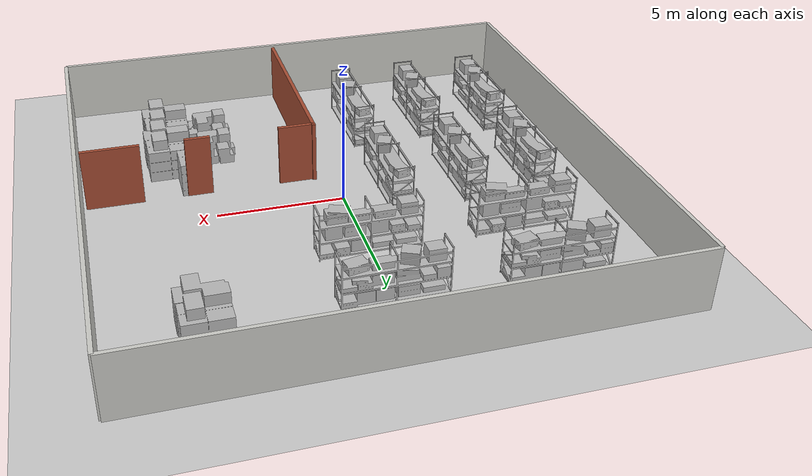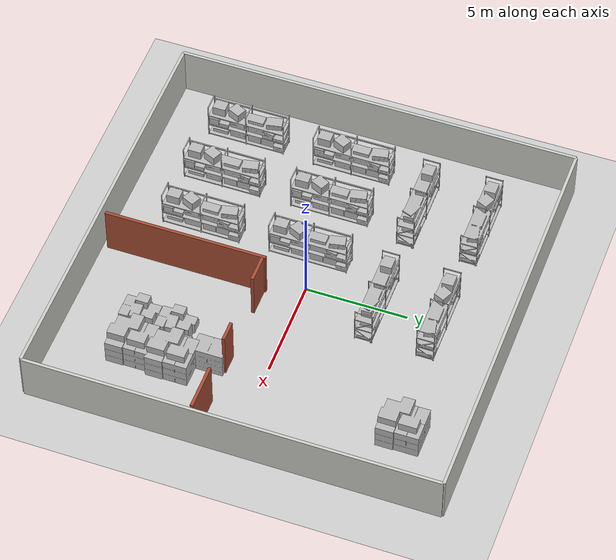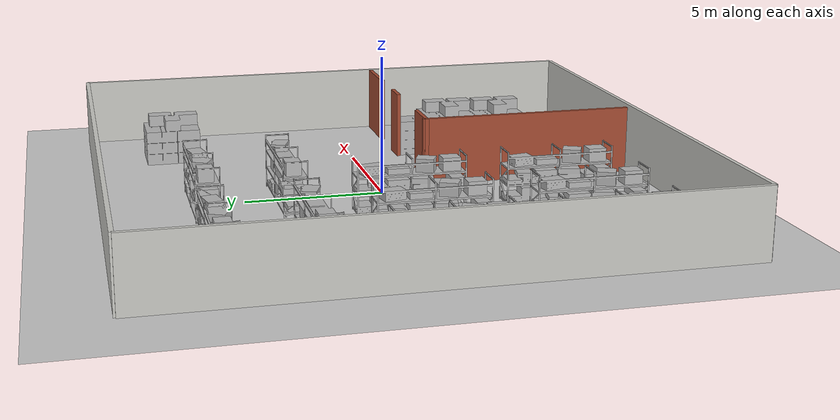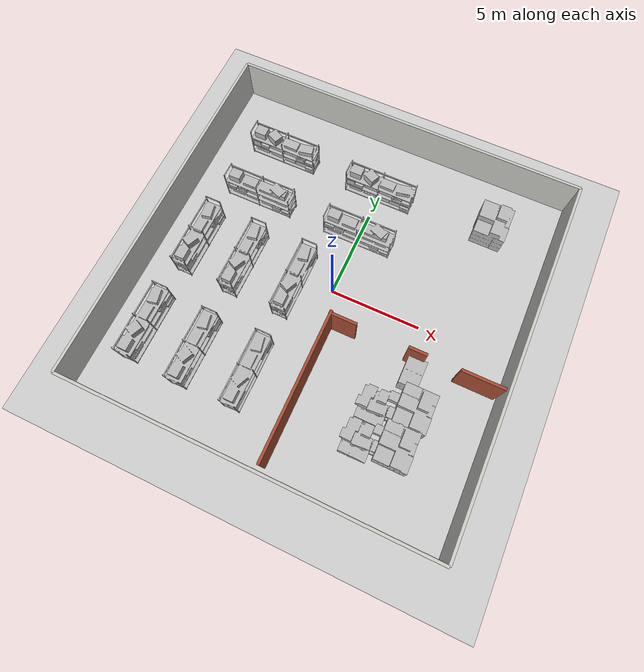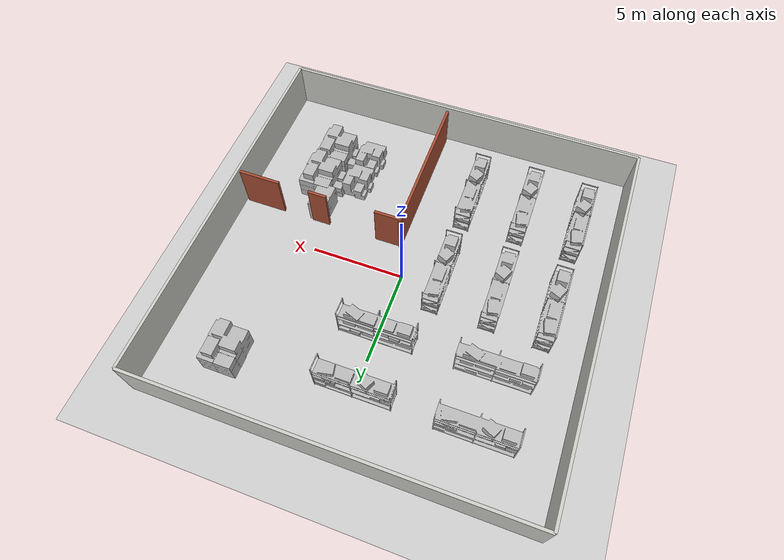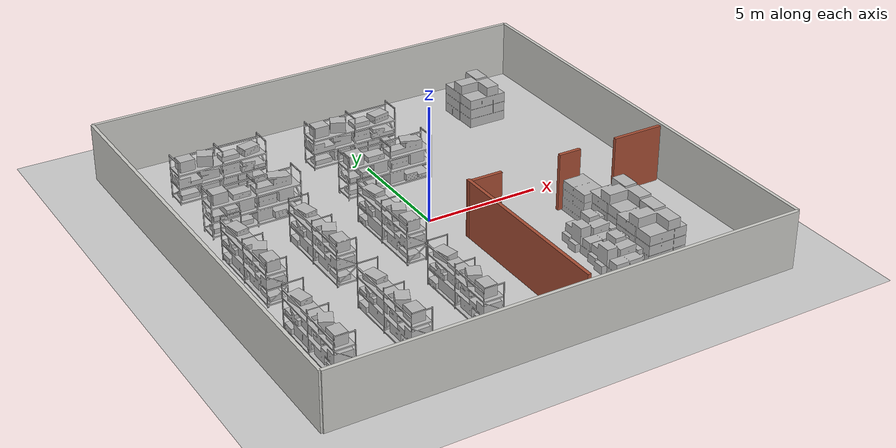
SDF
<sdf version="1.7">
 <world name="default">
  <light name="sun" type="directional">
   <pose>0 0 10 0 -0 0</pose>
   <diffuse>0.8 0.8 0.8 1</diffuse>
   <specular>0.2 0.2 0.2 1</specular>
   <attenuation>
    <range>1000</range>
    <constant>0.9</constant>
    <linear>0.01</linear>
    <quadratic>0.001</quadratic>
   </attenuation>
   <direction>-0.5 0.1 -0.9</direction>
   <spot><inner_angle>0</inner_angle><outer_angle>0</outer_angle><falloff>0</falloff></spot>
  </light>
  <model name="ground_plane">
   <static>1</static>
   <link name="link">
    <collision name="collision">
     <geometry><plane><normal>0 0 1</normal><size>100 100</size></plane></geometry>
     <surface><friction><ode><mu>100</mu><mu2>50</mu2></ode></friction></surface>
    </collision>
    <visual name="visual">
     <cast_shadows>0</cast_shadows>
     <geometry><plane><normal>0 0 1</normal><size>100 100</size></plane></geometry>
     <material>
      <script><uri>file://media/materials/scripts/gazebo.material</uri><name>Gazebo/Grey</name></script>
     </material>
    </visual>
   </link>
  </model>
  <gravity>0 0 -9.8</gravity>
  <magnetic_field>6e-06 2.3e-05 -4.2e-05</magnetic_field>
  <atmosphere type="adiabatic"/>
  <physics type="ode">
   <max_step_size>0.001</max_step_size>
   <real_time_factor>1</real_time_factor>
   <real_time_update_rate>1000</real_time_update_rate>
  </physics>
  <scene><ambient>0.4 0.4 0.4 1</ambient><background>0.7 0.7 0.7 1</background><shadows>1</shadows></scene>
  <spherical_coordinates>
   <surface_model>EARTH_WGS84</surface_model>
   <latitude_deg>0</latitude_deg>
   <longitude_deg>0</longitude_deg>
   <elevation>0</elevation>
   <heading_deg>0</heading_deg>
  </spherical_coordinates>
  <model name="aws_robomaker_warehouse_ClutteringA_01">
   <link name="link">
    <inertial>
     <mass>2</mass>
     <inertia><ixx>0.841</ixx><ixy>0</ixy><ixz>0</ixz><iyy>0.954</iyy><iyz>0</iyz><izz>1.422</izz></inertia>
    </inertial>
    <collision name="collision">
     <geometry>
      <mesh>
       <uri>model://sim_env/models/aws_robomaker_warehouse_ClutteringA_01/meshes/aws_robomaker_warehouse_ClutteringA_01_collision.DAE</uri>
       <scale>1 1 1</scale>
      </mesh>
     </geometry>
     <surface>
      <friction>
       <ode><mu>0.6</mu><mu2>0.6</mu2><fdir1>0 0 0</fdir1><slip1>0</slip1><slip2>0</slip2></ode>
       <torsional>
        <coefficient>1</coefficient>
        <patch_radius>0</patch_radius>
        <surface_radius>0</surface_radius>
        <use_patch_radius>1</use_patch_radius>
        <ode><slip>0</slip></ode>
       </torsional>
      </friction>
     </surface>
    </collision>
    <visual name="visual">
     <geometry>
      <mesh>
       <uri>model://sim_env/models/aws_robomaker_warehouse_ClutteringA_01/meshes/aws_robomaker_warehouse_ClutteringA_01_visual.DAE</uri>
      </mesh>
     </geometry>
     <meta><layer>1</layer></meta>
    </visual>
   </link>
   <static>1</static>
   <pose>4.52823 -6.5 0 0 -0 0</pose>
  </model>
  <model name="aws_robomaker_warehouse_ClutteringC_01">
   <link name="link">
    <inertial>
     <mass>1</mass>
     <inertia><ixx>1.558</ixx><ixy>0</ixy><ixz>0</ixz><iyy>1.821</iyy><iyz>0</iyz><izz>1.892</izz></inertia>
    </inertial>
    <collision name="collision">
     <geometry>
      <mesh>
       <uri>model://sim_env/models/aws_robomaker_warehouse_ClutteringC_01/meshes/aws_robomaker_warehouse_ClutteringC_01_collision.DAE</uri>
       <scale>1 1 1</scale>
      </mesh>
     </geometry>
     <surface>
      <friction>
       <ode><mu>0.6</mu><mu2>0.6</mu2><fdir1>0 0 0</fdir1><slip1>0</slip1><slip2>0</slip2></ode>
       <torsional>
        <coefficient>1</coefficient>
        <patch_radius>0</patch_radius>
        <surface_radius>0</surface_radius>
        <use_patch_radius>1</use_patch_radius>
        <ode><slip>0</slip></ode>
       </torsional>
      </friction>
     </surface>
    </collision>
    <visual name="visual">
     <geometry>
      <mesh>
       <uri>model://sim_env/models/aws_robomaker_warehouse_ClutteringC_01/meshes/aws_robomaker_warehouse_ClutteringC_01_visual.DAE</uri>
      </mesh>
     </geometry>
     <meta><layer>1</layer></meta>
    </visual>
   </link>
   <static>1</static>
   <pose>6.33701 -4.2 0 0 -0 0</pose>
  </model>
  <model name="aws_robomaker_warehouse_ClutteringA_01_0">
   <link name="link">
    <inertial>
     <mass>2</mass>
     <inertia><ixx>0.841</ixx><ixy>0</ixy><ixz>0</ixz><iyy>0.954</iyy><iyz>0</iyz><izz>1.422</izz></inertia>
    </inertial>
    <collision name="collision">
     <geometry>
      <mesh>
       <uri>model://sim_env/models/aws_robomaker_warehouse_ClutteringA_01/meshes/aws_robomaker_warehouse_ClutteringA_01_collision.DAE</uri>
       <scale>1 1 1</scale>
      </mesh>
     </geometry>
     <surface>
      <friction>
       <ode><mu>0.6</mu><mu2>0.6</mu2><fdir1>0 0 0</fdir1><slip1>0</slip1><slip2>0</slip2></ode>
       <torsional>
        <coefficient>1</coefficient>
        <patch_radius>0</patch_radius>
        <surface_radius>0</surface_radius>
        <use_patch_radius>1</use_patch_radius>
        <ode><slip>0</slip></ode>
       </torsional>
      </friction>
     </surface>
    </collision>
    <visual name="visual">
     <geometry>
      <mesh>
       <uri>model://sim_env/models/aws_robomaker_warehouse_ClutteringA_01/meshes/aws_robomaker_warehouse_ClutteringA_01_visual.DAE</uri>
      </mesh>
     </geometry>
     <meta><layer>1</layer></meta>
    </visual>
   </link>
   <static>1</static>
   <pose>4.5893 -4.7 0 0 -0 0</pose>
  </model>
  <model name="aws_robomaker_warehouse_ShelfE_01">
   <link name="link">
    <inertial>
     <mass>30</mass>
     <inertia><ixx>907.144</ixx><ixy>0</ixy><ixz>0</ixz><iyy>104.95</iyy><iyz>0</iyz><izz>824.248</izz></inertia>
    </inertial>
    <collision name="collision">
     <geometry>
      <mesh>
       <uri>model://sim_env/models/aws_robomaker_warehouse_ShelfE_01/meshes/aws_robomaker_warehouse_ShelfE_01_collision.DAE</uri>
       <scale>1 1 1</scale>
      </mesh>
     </geometry>
     <surface>
      <friction><ode><mu>0.2</mu><mu2>0.2</mu2><fdir1>0 0 0</fdir1><slip1>0</slip1><slip2>0</slip2></ode></friction>
     </surface>
    </collision>
    <visual name="visual">
     <geometry>
      <mesh>
       <uri>model://sim_env/models/aws_robomaker_warehouse_ShelfE_01/meshes/aws_robomaker_warehouse_ShelfE_01_visual.DAE</uri>
      </mesh>
     </geometry>
     <meta><layer>1</layer></meta>
    </visual>
   </link>
   <static>1</static>
   <pose>-6 3.5 -0.7 0 -0 0</pose>
  </model>
  <model name="aws_robomaker_warehouse_ShelfE_01_0">
   <link name="link">
    <inertial>
     <mass>30</mass>
     <inertia><ixx>907.144</ixx><ixy>0</ixy><ixz>0</ixz><iyy>104.95</iyy><iyz>0</iyz><izz>824.248</izz></inertia>
    </inertial>
    <collision name="collision">
     <geometry>
      <mesh>
       <uri>model://sim_env/models/aws_robomaker_warehouse_ShelfE_01/meshes/aws_robomaker_warehouse_ShelfE_01_collision.DAE</uri>
       <scale>1 1 1</scale>
      </mesh>
     </geometry>
     <surface>
      <friction><ode><mu>0.2</mu><mu2>0.2</mu2><fdir1>0 0 0</fdir1><slip1>0</slip1><slip2>0</slip2></ode></friction>
     </surface>
    </collision>
    <visual name="visual">
     <geometry>
      <mesh>
       <uri>model://sim_env/models/aws_robomaker_warehouse_ShelfE_01/meshes/aws_robomaker_warehouse_ShelfE_01_visual.DAE</uri>
      </mesh>
     </geometry>
     <meta><layer>1</layer></meta>
    </visual>
   </link>
   <static>1</static>
   <pose>0 3.5 -0.7 0 -0 0</pose>
  </model>
  <model name="aws_robomaker_warehouse_ShelfD_01">
   <link name="link">
    <inertial>
     <mass>30</mass>
     <inertia><ixx>907.144</ixx><ixy>0</ixy><ixz>0</ixz><iyy>104.95</iyy><iyz>0</iyz><izz>824.248</izz></inertia>
    </inertial>
    <collision name="collision">
     <geometry>
      <mesh>
       <uri>model://sim_env/models/aws_robomaker_warehouse_ShelfD_01/meshes/aws_robomaker_warehouse_ShelfD_01_collision.DAE</uri>
       <scale>1 1 1</scale>
      </mesh>
     </geometry>
     <surface>
      <friction><ode><mu>0.2</mu><mu2>0.2</mu2><fdir1>0 0 0</fdir1><slip1>0</slip1><slip2>0</slip2></ode></friction>
     </surface>
    </collision>
    <visual name="visual">
     <geometry>
      <mesh>
       <uri>model://sim_env/models/aws_robomaker_warehouse_ShelfD_01/meshes/aws_robomaker_warehouse_ShelfD_01_visual.DAE</uri>
      </mesh>
     </geometry>
     <meta><layer>1</layer></meta>
    </visual>
   </link>
   <static>1</static>
   <pose>-6 6.63287 -0.7 0 -0 0</pose>
  </model>
  <model name="aws_robomaker_warehouse_ShelfD_01_0">
   <link name="link">
    <inertial>
     <mass>30</mass>
     <inertia><ixx>907.144</ixx><ixy>0</ixy><ixz>0</ixz><iyy>104.95</iyy><iyz>0</iyz><izz>824.248</izz></inertia>
    </inertial>
    <collision name="collision">
     <geometry>
      <mesh>
       <uri>model://sim_env/models/aws_robomaker_warehouse_ShelfD_01/meshes/aws_robomaker_warehouse_ShelfD_01_collision.DAE</uri>
       <scale>1 1 1</scale>
      </mesh>
     </geometry>
     <surface>
      <friction><ode><mu>0.2</mu><mu2>0.2</mu2><fdir1>0 0 0</fdir1><slip1>0</slip1><slip2>0</slip2></ode></friction>
     </surface>
    </collision>
    <visual name="visual">
     <geometry>
      <mesh>
       <uri>model://sim_env/models/aws_robomaker_warehouse_ShelfD_01/meshes/aws_robomaker_warehouse_ShelfD_01_visual.DAE</uri>
      </mesh>
     </geometry>
     <meta><layer>1</layer></meta>
    </visual>
   </link>
   <static>1</static>
   <pose>0 6.5 -0.7 0 -0 0</pose>
  </model>
  <model name="aws_robomaker_warehouse_ShelfD_01_1">
   <link name="link">
    <inertial>
     <mass>30</mass>
     <inertia><ixx>907.144</ixx><ixy>0</ixy><ixz>0</ixz><iyy>104.95</iyy><iyz>0</iyz><izz>824.248</izz></inertia>
    </inertial>
    <collision name="collision">
     <geometry>
      <mesh>
       <uri>model://sim_env/models/aws_robomaker_warehouse_ShelfD_01/meshes/aws_robomaker_warehouse_ShelfD_01_collision.DAE</uri>
       <scale>1 1 1</scale>
      </mesh>
     </geometry>
     <surface>
      <friction><ode><mu>0.2</mu><mu2>0.2</mu2><fdir1>0 0 0</fdir1><slip1>0</slip1><slip2>0</slip2></ode></friction>
     </surface>
    </collision>
    <visual name="visual">
     <geometry>
      <mesh>
       <uri>model://sim_env/models/aws_robomaker_warehouse_ShelfD_01/meshes/aws_robomaker_warehouse_ShelfD_01_visual.DAE</uri>
      </mesh>
     </geometry>
     <meta><layer>1</layer></meta>
    </visual>
   </link>
   <static>1</static>
   <pose>-2 -0.5 -0.7 0 -0 1.57</pose>
  </model>
  <model name="aws_robomaker_warehouse_ShelfD_01_1_clone">
   <link name="link">
    <inertial>
     <mass>30</mass>
     <inertia><ixx>907.144</ixx><ixy>0</ixy><ixz>0</ixz><iyy>104.95</iyy><iyz>0</iyz><izz>824.248</izz></inertia>
    </inertial>
    <collision name="collision">
     <geometry>
      <mesh>
       <uri>model://sim_env/models/aws_robomaker_warehouse_ShelfD_01/meshes/aws_robomaker_warehouse_ShelfD_01_collision.DAE</uri>
       <scale>1 1 1</scale>
      </mesh>
     </geometry>
     <surface>
      <friction><ode><mu>0.2</mu><mu2>0.2</mu2><fdir1>0 0 0</fdir1><slip1>0</slip1><slip2>0</slip2></ode></friction>
     </surface>
    </collision>
    <visual name="visual">
     <geometry>
      <mesh>
       <uri>model://sim_env/models/aws_robomaker_warehouse_ShelfD_01/meshes/aws_robomaker_warehouse_ShelfD_01_visual.DAE</uri>
      </mesh>
     </geometry>
     <meta><layer>1</layer></meta>
    </visual>
   </link>
   <static>1</static>
   <pose>-5 -0.5 -0.7 0 -0 1.57</pose>
  </model>
  <model name="aws_robomaker_warehouse_ShelfD_01_1_clone_0">
   <link name="link">
    <inertial>
     <mass>30</mass>
     <inertia><ixx>907.144</ixx><ixy>0</ixy><ixz>0</ixz><iyy>104.95</iyy><iyz>0</iyz><izz>824.248</izz></inertia>
    </inertial>
    <collision name="collision">
     <geometry>
      <mesh>
       <uri>model://sim_env/models/aws_robomaker_warehouse_ShelfD_01/meshes/aws_robomaker_warehouse_ShelfD_01_collision.DAE</uri>
       <scale>1 1 1</scale>
      </mesh>
     </geometry>
     <surface>
      <friction><ode><mu>0.2</mu><mu2>0.2</mu2><fdir1>0 0 0</fdir1><slip1>0</slip1><slip2>0</slip2></ode></friction>
     </surface>
    </collision>
    <visual name="visual">
     <geometry>
      <mesh>
       <uri>model://sim_env/models/aws_robomaker_warehouse_ShelfD_01/meshes/aws_robomaker_warehouse_ShelfD_01_visual.DAE</uri>
      </mesh>
     </geometry>
     <meta><layer>1</layer></meta>
    </visual>
   </link>
   <static>1</static>
   <pose>-2 -5.88998 -0.7 0 -0 1.57</pose>
  </model>
  <model name="aws_robomaker_warehouse_ShelfD_01_1_clone_1">
   <link name="link">
    <inertial>
     <mass>30</mass>
     <inertia><ixx>907.144</ixx><ixy>0</ixy><ixz>0</ixz><iyy>104.95</iyy><iyz>0</iyz><izz>824.248</izz></inertia>
    </inertial>
    <collision name="collision">
     <geometry>
      <mesh>
       <uri>model://sim_env/models/aws_robomaker_warehouse_ShelfD_01/meshes/aws_robomaker_warehouse_ShelfD_01_collision.DAE</uri>
       <scale>1 1 1</scale>
      </mesh>
     </geometry>
     <surface>
      <friction><ode><mu>0.2</mu><mu2>0.2</mu2><fdir1>0 0 0</fdir1><slip1>0</slip1><slip2>0</slip2></ode></friction>
     </surface>
    </collision>
    <visual name="visual">
     <geometry>
      <mesh>
       <uri>model://sim_env/models/aws_robomaker_warehouse_ShelfD_01/meshes/aws_robomaker_warehouse_ShelfD_01_visual.DAE</uri>
      </mesh>
     </geometry>
     <meta><layer>1</layer></meta>
    </visual>
   </link>
   <static>1</static>
   <pose>-5 -5.9682 -0.7 0 -0 1.57</pose>
  </model>
  <model name="aws_robomaker_warehouse_ClutteringC_01_1">
   <link name="link">
    <inertial>
     <mass>1</mass>
     <inertia><ixx>1.558</ixx><ixy>0</ixy><ixz>0</ixz><iyy>1.821</iyy><iyz>0</iyz><izz>1.892</izz></inertia>
    </inertial>
    <collision name="collision">
     <geometry>
      <mesh>
       <uri>model://sim_env/models/aws_robomaker_warehouse_ClutteringC_01/meshes/aws_robomaker_warehouse_ClutteringC_01_collision.DAE</uri>
       <scale>1 1 1</scale>
      </mesh>
     </geometry>
     <surface>
      <friction>
       <ode><mu>0.6</mu><mu2>0.6</mu2><fdir1>0 0 0</fdir1><slip1>0</slip1><slip2>0</slip2></ode>
       <torsional>
        <coefficient>1</coefficient>
        <patch_radius>0</patch_radius>
        <surface_radius>0</surface_radius>
        <use_patch_radius>1</use_patch_radius>
        <ode><slip>0</slip></ode>
       </torsional>
      </friction>
     </surface>
    </collision>
    <visual name="visual">
     <geometry>
      <mesh>
       <uri>model://sim_env/models/aws_robomaker_warehouse_ClutteringC_01/meshes/aws_robomaker_warehouse_ClutteringC_01_visual.DAE</uri>
      </mesh>
     </geometry>
     <meta><layer>1</layer></meta>
    </visual>
   </link>
   <static>1</static>
   <pose>6.49861 6.95891 0 0 -0 0</pose>
  </model>
  <model name="aws_robomaker_warehouse_ClutteringC_01_0">
   <link name="link">
    <inertial>
     <mass>1</mass>
     <inertia><ixx>1.558</ixx><ixy>0</ixy><ixz>0</ixz><iyy>1.821</iyy><iyz>0</iyz><izz>1.892</izz></inertia>
    </inertial>
    <collision name="collision">
     <geometry>
      <mesh>
       <uri>model://sim_env/models/aws_robomaker_warehouse_ClutteringC_01/meshes/aws_robomaker_warehouse_ClutteringC_01_collision.DAE</uri>
       <scale>1 1 1</scale>
      </mesh>
     </geometry>
     <surface>
      <friction>
       <ode><mu>0.6</mu><mu2>0.6</mu2><fdir1>0 0 0</fdir1><slip1>0</slip1><slip2>0</slip2></ode>
       <torsional>
        <coefficient>1</coefficient>
        <patch_radius>0</patch_radius>
        <surface_radius>0</surface_radius>
        <use_patch_radius>1</use_patch_radius>
        <ode><slip>0</slip></ode>
       </torsional>
      </friction>
     </surface>
    </collision>
    <visual name="visual">
     <geometry>
      <mesh>
       <uri>model://sim_env/models/aws_robomaker_warehouse_ClutteringC_01/meshes/aws_robomaker_warehouse_ClutteringC_01_visual.DAE</uri>
      </mesh>
     </geometry>
     <meta><layer>1</layer></meta>
    </visual>
   </link>
   <static>1</static>
   <pose>6.2 -6.2 0 0 -0 0</pose>
  </model>
  <model name="aws_robomaker_warehouse_ClutteringD_01">
   <link name="link">
    <inertial>
     <mass>1</mass>
     <inertia><ixx>1.558</ixx><ixy>0</ixy><ixz>0</ixz><iyy>1.821</iyy><iyz>0</iyz><izz>1.892</izz></inertia>
    </inertial>
    <collision name="collision">
     <geometry>
      <mesh>
       <uri>model://sim_env/models/aws_robomaker_warehouse_ClutteringD_01/meshes/aws_robomaker_warehouse_ClutteringD_01_collision.DAE</uri>
       <scale>1 1 1</scale>
      </mesh>
     </geometry>
     <surface>
      <friction>
       <ode><mu>0.6</mu><mu2>0.6</mu2><fdir1>0 0 0</fdir1><slip1>0</slip1><slip2>0</slip2></ode>
       <torsional>
        <coefficient>1</coefficient>
        <patch_radius>0</patch_radius>
        <surface_radius>0</surface_radius>
        <use_patch_radius>1</use_patch_radius>
        <ode><slip>0</slip></ode>
       </torsional>
      </friction>
     </surface>
    </collision>
    <visual name="visual">
     <geometry>
      <mesh>
       <uri>model://sim_env/models/aws_robomaker_warehouse_ClutteringD_01/meshes/aws_robomaker_warehouse_ClutteringD_01_visual.DAE</uri>
      </mesh>
     </geometry>
     <meta><layer>1</layer></meta>
    </visual>
   </link>
   <static>1</static>
   <pose>5.56779 -2.61305 -0.5 0 -0 0</pose>
  </model>
  <model name="aws_robomaker_warehouse_ShelfD_01_1_clone_1_clone">
   <link name="link">
    <inertial>
     <mass>30</mass>
     <inertia><ixx>907.144</ixx><ixy>0</ixy><ixz>0</ixz><iyy>104.95</iyy><iyz>0</iyz><izz>824.248</izz></inertia>
    </inertial>
    <collision name="collision">
     <geometry>
      <mesh>
       <uri>model://sim_env/models/aws_robomaker_warehouse_ShelfD_01/meshes/aws_robomaker_warehouse_ShelfD_01_collision.DAE</uri>
       <scale>1 1 1</scale>
      </mesh>
     </geometry>
     <surface>
      <friction><ode><mu>0.2</mu><mu2>0.2</mu2><fdir1>0 0 0</fdir1><slip1>0</slip1><slip2>0</slip2></ode></friction>
     </surface>
    </collision>
    <visual name="visual">
     <geometry>
      <mesh>
       <uri>model://sim_env/models/aws_robomaker_warehouse_ShelfD_01/meshes/aws_robomaker_warehouse_ShelfD_01_visual.DAE</uri>
      </mesh>
     </geometry>
     <meta><layer>1</layer></meta>
    </visual>
   </link>
   <static>1</static>
   <pose>-7.95437 -5.83764 -0.7 0 -0 1.57</pose>
  </model>
  <model name="aws_robomaker_warehouse_ShelfD_01_1_clone_1_clone_0">
   <link name="link">
    <inertial>
     <mass>30</mass>
     <inertia><ixx>907.144</ixx><ixy>0</ixy><ixz>0</ixz><iyy>104.95</iyy><iyz>0</iyz><izz>824.248</izz></inertia>
    </inertial>
    <collision name="collision">
     <geometry>
      <mesh>
       <uri>model://sim_env/models/aws_robomaker_warehouse_ShelfD_01/meshes/aws_robomaker_warehouse_ShelfD_01_collision.DAE</uri>
       <scale>1 1 1</scale>
      </mesh>
     </geometry>
     <surface>
      <friction><ode><mu>0.2</mu><mu2>0.2</mu2><fdir1>0 0 0</fdir1><slip1>0</slip1><slip2>0</slip2></ode></friction>
     </surface>
    </collision>
    <visual name="visual">
     <geometry>
      <mesh>
       <uri>model://sim_env/models/aws_robomaker_warehouse_ShelfD_01/meshes/aws_robomaker_warehouse_ShelfD_01_visual.DAE</uri>
      </mesh>
     </geometry>
     <meta><layer>1</layer></meta>
    </visual>
   </link>
   <static>1</static>
   <pose>-7.82227 -0.391682 -0.7 0 -0 1.57</pose>
  </model>
  <model name="single_wall">
   <pose>-10 0 0 0 -0 1.57</pose>
   <link name="Wall_3">
    <collision name="Wall_3_Collision">
     <geometry><box><size>20 0.15 2.5</size></box></geometry>
     <pose>0 0 1.25 0 -0 0</pose>
    </collision>
    <visual name="Wall_3_Visual">
     <pose>0 0 1.25 0 -0 0</pose>
     <geometry><box><size>20 0.15 2.5</size></box></geometry>
     <material>
      <script><uri>file://media/materials/scripts/gazebo.material</uri><name>Gazebo/CeilingTiled</name></script>
      <ambient>1 1 1 1</ambient>
     </material>
     <meta><layer>0</layer></meta>
    </visual>
   </link>
   <static>1</static>
  </model>
  <model name="single_wall_clone">
   <pose>0 10 0 0 -0 0</pose>
   <link name="Wall_3">
    <collision name="Wall_3_Collision">
     <geometry><box><size>20 0.15 2.5</size></box></geometry>
     <pose>0 0 1.25 0 -0 0</pose>
    </collision>
    <visual name="Wall_3_Visual">
     <pose>0 0 1.25 0 -0 0</pose>
     <geometry><box><size>20 0.15 2.5</size></box></geometry>
     <material>
      <script><uri>file://media/materials/scripts/gazebo.material</uri><name>Gazebo/CeilingTiled</name></script>
      <ambient>1 1 1 1</ambient>
     </material>
     <meta><layer>0</layer></meta>
    </visual>
   </link>
   <static>1</static>
  </model>
  <model name="single_wall_clone_0">
   <pose>0 -10 0 0 -0 3.14</pose>
   <link name="Wall_3">
    <collision name="Wall_3_Collision">
     <geometry><box><size>20 0.15 2.5</size></box></geometry>
     <pose>0 0 1.25 0 -0 0</pose>
    </collision>
    <visual name="Wall_3_Visual">
     <pose>0 0 1.25 0 -0 0</pose>
     <geometry><box><size>20 0.15 2.5</size></box></geometry>
     <material>
      <script><uri>file://media/materials/scripts/gazebo.material</uri><name>Gazebo/CeilingTiled</name></script>
      <ambient>1 1 1 1</ambient>
     </material>
     <meta><layer>0</layer></meta>
    </visual>
   </link>
   <static>1</static>
  </model>
  <model name="single_wall_clone_1">
   <pose>10 0 0 0 0 -1.57</pose>
   <link name="Wall_3">
    <collision name="Wall_3_Collision">
     <geometry><box><size>20 0.15 2.5</size></box></geometry>
     <pose>0 0 1.25 0 -0 0</pose>
    </collision>
    <visual name="Wall_3_Visual">
     <pose>0 0 1.25 0 -0 0</pose>
     <geometry><box><size>20 0.15 2.5</size></box></geometry>
     <material>
      <script><uri>file://media/materials/scripts/gazebo.material</uri><name>Gazebo/CeilingTiled</name></script>
      <ambient>1 1 1 1</ambient>
     </material>
     <meta><layer>0</layer></meta>
    </visual>
   </link>
   <static>1</static>
  </model>
  <model name="single_wall_1">
   <pose>0.7388 -5.70207 0 0 0 -1.57</pose>
   <link name="Wall_9">
    <collision name="Wall_9_Collision">
     <geometry><box><size>8 0.15 2.5</size></box></geometry>
     <pose>0 0 1.25 0 -0 0</pose>
    </collision>
    <visual name="Wall_9_Visual">
     <pose>0 0 1.25 0 -0 0</pose>
     <geometry><box><size>8 0.15 2.5</size></box></geometry>
     <material>
      <script><uri>file://media/materials/scripts/gazebo.material</uri><name>Gazebo/Bricks</name></script>
      <ambient>1 1 1 1</ambient>
     </material>
     <meta><layer>0</layer></meta>
    </visual>
   </link>
   <static>1</static>
  </model>
  <model name="single_wall_1_clone_clone">
   <link name="Wall_9">
    <inertial>
     <inertia><ixx>0</ixx><ixy>0</ixy><ixz>0</ixz><iyy>0</iyy><iyz>0</iyz><izz>0</izz></inertia>
     <mass>0</mass>
    </inertial>
    <visual name="Wall_9_Visual">
     <pose>0 0 1.25 0 -0 0</pose>
     <geometry><box><size>1 0.15 2.5</size></box></geometry>
     <material>
      <script><uri>file://media/materials/scripts/gazebo.material</uri><name>Gazebo/Bricks</name></script>
      <ambient>1 1 1 1</ambient>
      <shader type="pixel"><normal_map>__default__</normal_map></shader>
      <diffuse>1 1 1 1</diffuse>
      <specular>0.2 0.2 0.2 1</specular>
      <emissive>0 0 0 1</emissive>
     </material>
     <meta><layer>0</layer></meta>
    </visual>
    <collision name="Wall_9_Collision">
     <pose>0 0 1.25 0 -0 0</pose>
     <geometry><box><size>1 0.15 2.5</size></box></geometry>
     <surface>
      <friction>
       <ode><mu>1</mu><mu2>1</mu2><fdir1>0 0 0</fdir1><slip1>0</slip1><slip2>0</slip2></ode>
       <torsional>
        <coefficient>1</coefficient>
        <patch_radius>0</patch_radius>
        <surface_radius>0</surface_radius>
        <use_patch_radius>1</use_patch_radius>
        <ode><slip>0</slip></ode>
       </torsional>
      </friction>
      <bounce><restitution_coefficient>0</restitution_coefficient><threshold>1e+06</threshold></bounce>
      <contact>
       <collide_without_contact>0</collide_without_contact>
       <collide_without_contact_bitmask>1</collide_without_contact_bitmask>
       <collide_bitmask>1</collide_bitmask>
       <ode>
        <soft_cfm>0</soft_cfm>
        <soft_erp>0.2</soft_erp>
        <kp>1e+13</kp>
        <kd>1</kd>
        <max_vel>0.01</max_vel>
        <min_depth>0</min_depth>
       </ode>
       <bullet>
        <split_impulse>1</split_impulse>
        <split_impulse_penetration_threshold>-0.01</split_impulse_penetration_threshold>
        <soft_cfm>0</soft_cfm>
        <soft_erp>0.2</soft_erp>
        <kp>1e+13</kp>
        <kd>1</kd>
       </bullet>
      </contact>
     </surface>
    </collision>
   </link>
   <static>1</static>
   <pose>5.36173 -1.85107 0 0 -0 3.14</pose>
  </model>
  <model name="single_wall_1_clone">
   <link name="Wall_9">
    <inertial>
     <inertia><ixx>0</ixx><ixy>0</ixy><ixz>0</ixz><iyy>0</iyy><iyz>0</iyz><izz>0</izz></inertia>
     <mass>0</mass>
    </inertial>
    <visual name="Wall_9_Visual">
     <pose>0 0 1.25 0 -0 0</pose>
     <geometry><box><size>1.5 0.15 2.5</size></box></geometry>
     <material>
      <script><uri>file://media/materials/scripts/gazebo.material</uri><name>Gazebo/Bricks</name></script>
      <ambient>1 1 1 1</ambient>
      <shader type="pixel"><normal_map>__default__</normal_map></shader>
      <diffuse>1 1 1 1</diffuse>
      <specular>0.2 0.2 0.2 1</specular>
      <emissive>0 0 0 1</emissive>
     </material>
     <meta><layer>0</layer></meta>
    </visual>
    <collision name="Wall_9_Collision">
     <pose>0 0 1.25 0 -0 0</pose>
     <geometry><box><size>1 0.15 2.5</size></box></geometry>
     <surface>
      <friction>
       <ode><mu>1</mu><mu2>1</mu2><fdir1>0 0 0</fdir1><slip1>0</slip1><slip2>0</slip2></ode>
       <torsional>
        <coefficient>1</coefficient>
        <patch_radius>0</patch_radius>
        <surface_radius>0</surface_radius>
        <use_patch_radius>1</use_patch_radius>
        <ode><slip>0</slip></ode>
       </torsional>
      </friction>
      <bounce><restitution_coefficient>0</restitution_coefficient><threshold>1e+06</threshold></bounce>
      <contact>
       <collide_without_contact>0</collide_without_contact>
       <collide_without_contact_bitmask>1</collide_without_contact_bitmask>
       <collide_bitmask>1</collide_bitmask>
       <ode>
        <soft_cfm>0</soft_cfm>
        <soft_erp>0.2</soft_erp>
        <kp>1e+13</kp>
        <kd>1</kd>
        <max_vel>0.01</max_vel>
        <min_depth>0</min_depth>
       </ode>
       <bullet>
        <split_impulse>1</split_impulse>
        <split_impulse_penetration_threshold>-0.01</split_impulse_penetration_threshold>
        <soft_cfm>0</soft_cfm>
        <soft_erp>0.2</soft_erp>
        <kp>1e+13</kp>
        <kd>1</kd>
       </bullet>
      </contact>
     </surface>
    </collision>
   </link>
   <static>1</static>
   <pose>1.40743 -1.85107 0 0 -0 3.14</pose>
  </model>
  <model name="single_wall_1_clone_clone_clone">
   <link name="Wall_9">
    <inertial>
     <inertia><ixx>0</ixx><ixy>0</ixy><ixz>0</ixz><iyy>0</iyy><iyz>0</iyz><izz>0</izz></inertia>
     <mass>0</mass>
    </inertial>
    <visual name="Wall_9_Visual">
     <pose>0 0 1.25 0 -0 0</pose>
     <geometry><box><size>2.25 0.15 2.5</size></box></geometry>
     <material>
      <script><uri>file://media/materials/scripts/gazebo.material</uri><name>Gazebo/Bricks</name></script>
      <ambient>1 1 1 1</ambient>
      <shader type="pixel"><normal_map>__default__</normal_map></shader>
      <diffuse>1 1 1 1</diffuse>
      <specular>0.2 0.2 0.2 1</specular>
      <emissive>0 0 0 1</emissive>
     </material>
     <meta><layer>0</layer></meta>
    </visual>
    <collision name="Wall_9_Collision">
     <pose>0 0 1.25 0 -0 0</pose>
     <geometry><box><size>2.25 0.15 2.5</size></box></geometry>
     <surface>
      <friction>
       <ode><mu>1</mu><mu2>1</mu2><fdir1>0 0 0</fdir1><slip1>0</slip1><slip2>0</slip2></ode>
       <torsional>
        <coefficient>1</coefficient>
        <patch_radius>0</patch_radius>
        <surface_radius>0</surface_radius>
        <use_patch_radius>1</use_patch_radius>
        <ode><slip>0</slip></ode>
       </torsional>
      </friction>
      <bounce><restitution_coefficient>0</restitution_coefficient><threshold>1e+06</threshold></bounce>
      <contact>
       <collide_without_contact>0</collide_without_contact>
       <collide_without_contact_bitmask>1</collide_without_contact_bitmask>
       <collide_bitmask>1</collide_bitmask>
       <ode>
        <soft_cfm>0</soft_cfm>
        <soft_erp>0.2</soft_erp>
        <kp>1e+13</kp>
        <kd>1</kd>
        <max_vel>0.01</max_vel>
        <min_depth>0</min_depth>
       </ode>
       <bullet>
        <split_impulse>1</split_impulse>
        <split_impulse_penetration_threshold>-0.01</split_impulse_penetration_threshold>
        <soft_cfm>0</soft_cfm>
        <soft_erp>0.2</soft_erp>
        <kp>1e+13</kp>
        <kd>1</kd>
       </bullet>
      </contact>
     </surface>
    </collision>
   </link>
   <static>1</static>
   <pose>8.68743 -1.85107 0 0 -0 3.14</pose>
  </model>
 </world>
</sdf>
